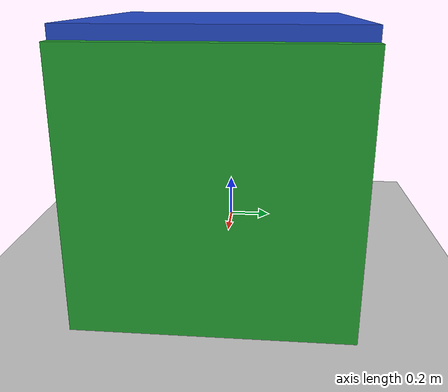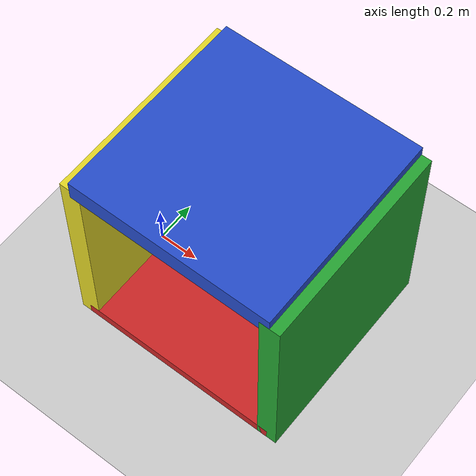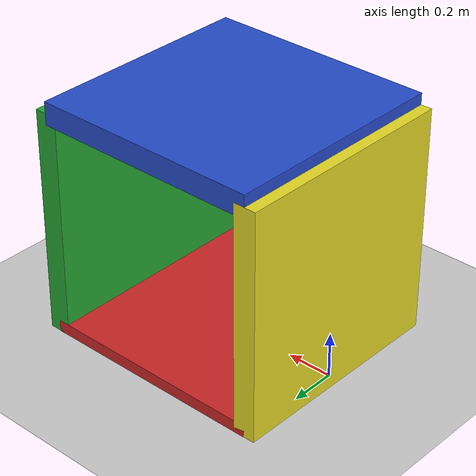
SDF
<?xml version="1.0" ?>
<sdf version="1.7">
    <world name="close_chain_world">
        <physics name="1ms" type="ignored">
            <max_step_size>0.001</max_step_size>
            <real_time_factor>1.0</real_time_factor>
        </physics>
        <plugin
            filename="ignition-gazebo-physics-system"
            name="ignition::gazebo::systems::Physics">
        </plugin>
        <plugin
            filename="ignition-gazebo-user-commands-system"
            name="ignition::gazebo::systems::UserCommands">
        </plugin>
        <plugin
            filename="ignition-gazebo-scene-broadcaster-system"
            name="ignition::gazebo::systems::SceneBroadcaster">
        </plugin>

        <gui fullscreen="0">

            <!-- 3D scene -->
            <plugin filename="GzScene3D" name="3D View">
                <ignition-gui>
                <title>3D View</title>
                <property type="bool" key="showTitleBar">false</property>
                <property type="string" key="state">docked</property>
                </ignition-gui>

                <engine>ogre2</engine>
                <scene>scene</scene>
                <ambient_light>0.4 0.4 0.4</ambient_light>
                <background_color>0.8 0.8 0.8</background_color>
            </plugin>

            <!-- World control -->
            <plugin filename="WorldControl" name="World control">
                <ignition-gui>
                <title>World control</title>
                <property type="bool" key="showTitleBar">false</property>
                <property type="bool" key="resizable">false</property>
                <property type="double" key="height">72</property>
                <property type="double" key="width">121</property>
                <property type="double" key="z">1</property>

                <property type="string" key="state">floating</property>
                <anchors target="3D View">
                    <line own="left" target="left"/>
                    <line own="bottom" target="bottom"/>
                </anchors>
                </ignition-gui>

                <play_pause>true</play_pause>
                <step>true</step>
                <start_paused>true</start_paused>
                <service>/world/car_world/control</service>
                <stats_topic>/world/car_world/stats</stats_topic>
            </plugin>

            <!-- World statistics -->
            <plugin filename="WorldStats" name="World stats">
                <ignition-gui>
                <title>World stats</title>
                <property type="bool" key="showTitleBar">false</property>
                <property type="bool" key="resizable">false</property>
                <property type="double" key="height">110</property>
                <property type="double" key="width">290</property>
                <property type="double" key="z">1</property>

                <property type="string" key="state">floating</property>
                <anchors target="3D View">
                    <line own="right" target="right"/>
                    <line own="bottom" target="bottom"/>
                </anchors>
                </ignition-gui>

                <sim_time>true</sim_time>
                <real_time>true</real_time>
                <real_time_factor>true</real_time_factor>
                <iterations>true</iterations>
                <topic>/world/car_world/stats</topic>

            </plugin>

            <!-- Entity tree -->
            <plugin filename="EntityTree" name="Entity tree">
            </plugin>

        </gui>

        <light type="directional" name="sun">
            <cast_shadows>true</cast_shadows>
            <pose>0 0 10 0 0 0</pose>
            <diffuse>0.8 0.8 0.8 1</diffuse>
            <specular>0.2 0.2 0.2 1</specular>
            <attenuation>
                <range>1000</range>
                <constant>0.9</constant>
                <linear>0.01</linear>
                <quadratic>0.001</quadratic>
            </attenuation>
            <direction>-0.5 0.1 -0.9</direction>
        </light>

        <model name="ground_plane">
            <static>true</static>
            <link name="link">
                <collision name="collision">
                <geometry>
                    <plane>
                    <normal>0 0 1</normal>
                    </plane>
                </geometry>
                </collision>
                <visual name="visual">
                <geometry>
                    <plane>
                    <normal>0 0 1</normal>
                    <size>100 100</size>
                    </plane>
                </geometry>
                <material>
                    <ambient>0.8 0.8 0.8 1</ambient>
                    <diffuse>0.8 0.8 0.8 1</diffuse>
                    <specular>0.8 0.8 0.8 1</specular>
                </material>
                </visual>
            </link>
        </model>

        <model name="closed_chain">

          <link name="right_pad1">
            <self_collide>1</self_collide>
            <pose>0.5 0 0 0 0.0 0</pose>
            <collision name="right_pad1_collision">
              <geometry>
                <box>
                  <size>1.0 1.0 0.1</size>
                </box>
              </geometry>
            </collision>
            <visual name="right_pad1_visual">
              <geometry>
                <box>
                  <size>1.0 1.0 0.1</size>
                </box>
              </geometry>
              <material>
                <script>
                  <uri>file://media/materials/scripts/gazebo.material</uri>
                  <name>Gazebo/Red</name>
                </script>
              </material>
            </visual>
          </link>
          <!-- Joints are respect the CHILD in SDF -->
          <joint type="revolute" name="right_pad_joint1">
            <pose>-0.5 0 0 0 0 0</pose>
            <parent>right_pad1</parent>
            <child>right_pad2</child>
            <axis>
              <xyz>0 1 0</xyz>
            </axis>
          </joint>

          <link name="right_pad2">
            <self_collide>1</self_collide>
            <pose>1.0 0 0.5 0 -1.5707963268 0</pose>
            <collision name="right_pad2_collision">
              <geometry>
                <box>
                  <size>1.0 1.0 0.1</size>
                </box>
              </geometry>
            </collision>
            <visual name="right_pad2_visual">
              <geometry>
                <box>
                  <size>1.0 1.0 0.1</size>
                </box>
              </geometry>
              <material>
                <script>
                  <uri>file://media/materials/scripts/gazebo.material</uri>
                  <name>Gazebo/Green</name>
                </script>
              </material>
            </visual>
          </link>

          <joint type="revolute" name="right_pad_joint2">
            <pose>-0.5 0 0 0 0 0</pose>
            <parent>right_pad2</parent>
            <child>right_pad3</child>
            <axis>
              <xyz>0 1 0</xyz>
            </axis>
          </joint>

          <link name="right_pad3">
            <self_collide>1</self_collide>
            <pose>0.5 0 1 0 -3.1415926536 0</pose>
            <collision name="right_pad3_collision">
              <geometry>
                <box>
                  <size>1.0 1.0 0.1</size>
                </box>
              </geometry>
            </collision>
            <visual name="right_pad3_visual">
              <geometry>
                <box>
                  <size>1.0 1.0 0.1</size>
                </box>
              </geometry>
              <material>
                <script>
                  <uri>file://media/materials/scripts/gazebo.material</uri>
                  <name>Gazebo/Blue</name>
                </script>
              </material>
            </visual>
          </link>

          <joint type="revolute" name="right_pad_joint3">
            <pose>-0.5 0 0 0 0 0</pose>
            <parent>right_pad3</parent>
            <child>right_pad4</child>
            <axis>
              <xyz>0 1 0</xyz>
            </axis>
          </joint>

          <link name="right_pad4">
            <self_collide>1</self_collide>
            <pose>0 0 0.5 0 -4.7123889804 0</pose>
            <collision name="right_pad4_collision">
              <geometry>
                <box>
                  <size>1.0 1.0 0.1</size>
                </box>
              </geometry>
            </collision>
            <visual name="right_pad4_visual">
              <geometry>
                <box>
                  <size>1.0 1.0 0.1</size>
                </box>
              </geometry>
              <material>
                <script>
                  <uri>file://media/materials/scripts/gazebo.material</uri>
                  <name>Gazebo/Yellow</name>
                </script>
              </material>
            </visual>
          </link>

          <joint type="revolute" name="right_pad_joint4">
            <pose>-0.5 0 0 0 0 0</pose>
            <parent>right_pad4</parent>
            <child>right_pad1</child>
            <axis>
              <xyz>0 1 0</xyz>
            </axis>
        </joint>

      </model>
    </world>
</sdf>
